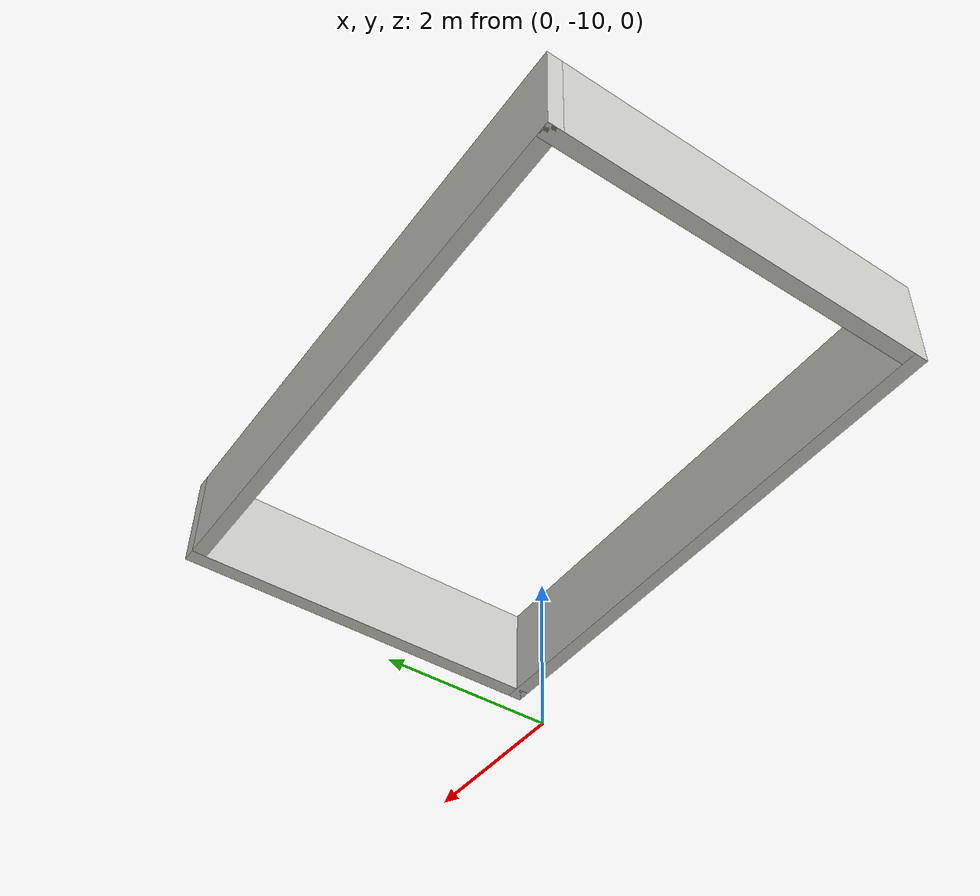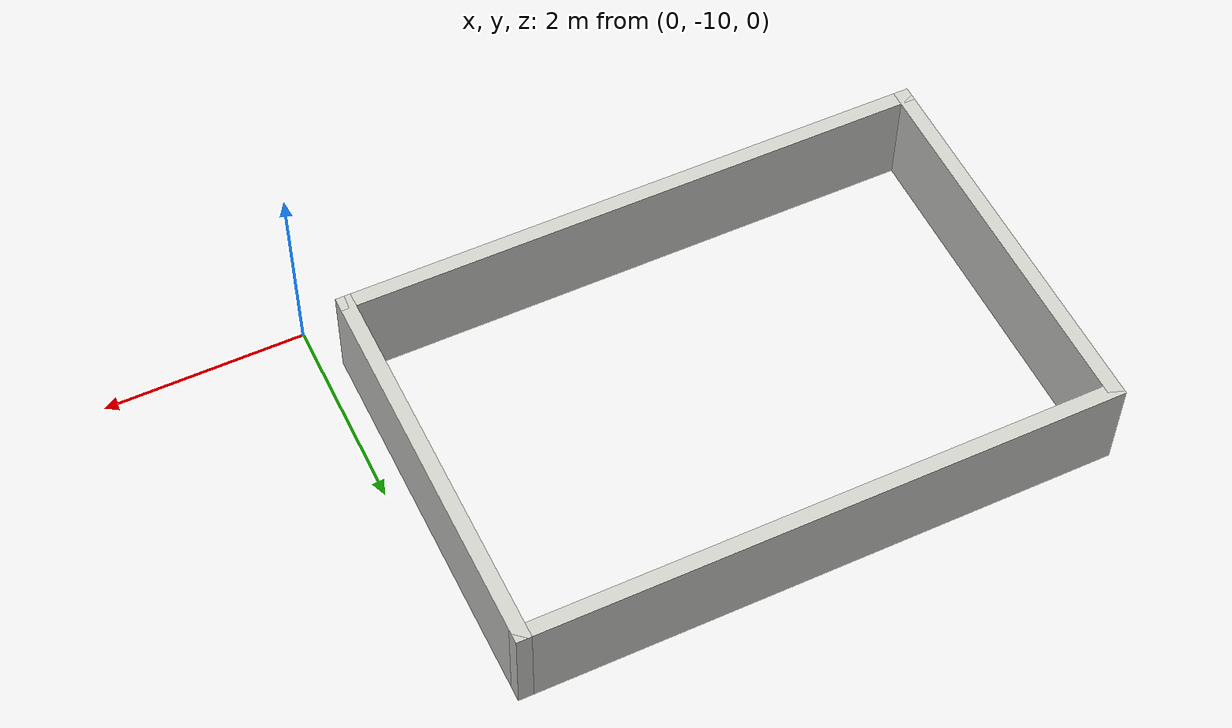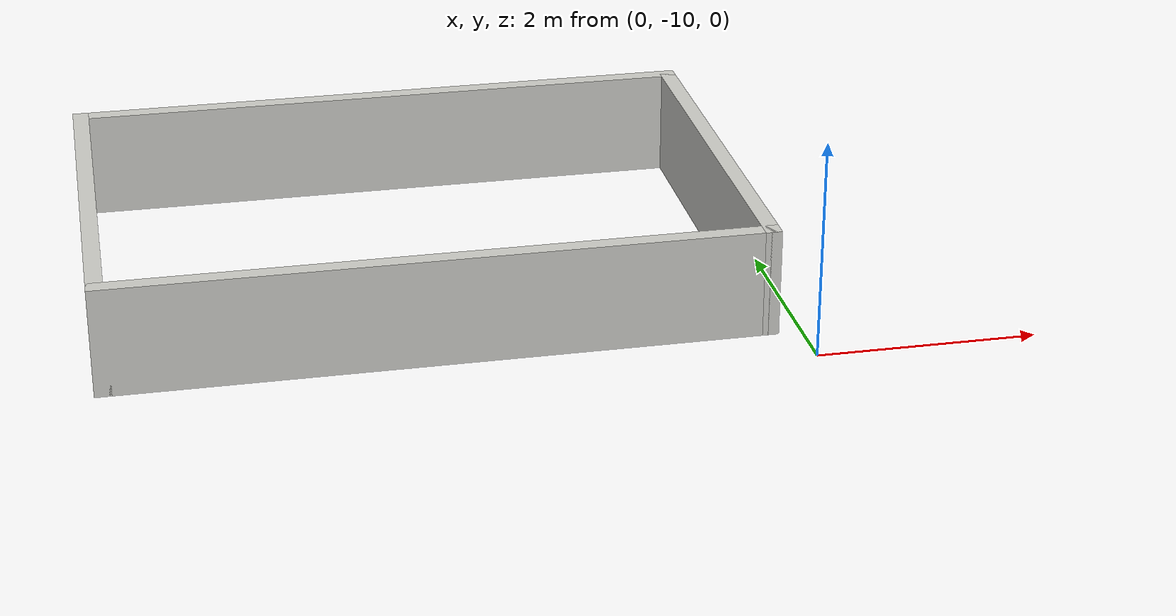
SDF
<?xml version='1.0'?>
<sdf version='1.7'>
  <model name='ground'>
    <pose>-3.109 -4.768 0 0 -0 0</pose>
    <link name='Wall_23'>
      <collision name='Wall_23_Collision'>
        <geometry>
          <box>
            <size>4 0.15 1</size>
          </box>
        </geometry>
        <pose>0 0 0.5 0 -0 0</pose>
      </collision>
      <visual name='Wall_23_Visual'>
        <pose>0 0 0.5 0 -0 0</pose>
        <geometry>
          <box>
            <size>4 0.15 1</size>
          </box>
        </geometry>
        <material>
          <script>
            <uri>file://media/materials/scripts/gazebo.material</uri>
            <name>Gazebo/CeilingTiled</name>
          </script>
          <ambient>0.996078 0.47451 0.0196078 1</ambient>
        </material>
        <meta>
          <layer>0</layer>
        </meta>
      </visual>
      <pose>-3.034 -2.768 0 0 -0 -1.5708</pose>
    </link>
    <link name='Wall_24'>
      <collision name='Wall_24_Collision'>
        <geometry>
          <box>
            <size>6 0.15 1</size>
          </box>
        </geometry>
        <pose>0 0 0.5 0 -0 0</pose>
      </collision>
      <visual name='Wall_24_Visual'>
        <pose>0 0 0.5 0 -0 0</pose>
        <geometry>
          <box>
            <size>6 0.15 1</size>
          </box>
        </geometry>
        <material>
          <script>
            <uri>file://media/materials/scripts/gazebo.material</uri>
            <name>Gazebo/CeilingTiled</name>
          </script>
          <ambient>0.996078 0.47451 0.0196078 1</ambient>
        </material>
        <meta>
          <layer>0</layer>
        </meta>
      </visual>
      <pose>-0.109 -4.693 0 0 -0 0</pose>
    </link>
    <link name='Wall_25'>
      <collision name='Wall_25_Collision'>
        <geometry>
          <box>
            <size>4 0.15 1</size>
          </box>
        </geometry>
        <pose>0 0 0.5 0 -0 0</pose>
      </collision>
      <visual name='Wall_25_Visual'>
        <pose>0 0 0.5 0 -0 0</pose>
        <geometry>
          <box>
            <size>4 0.15 1</size>
          </box>
        </geometry>
        <material>
          <script>
            <uri>file://media/materials/scripts/gazebo.material</uri>
            <name>Gazebo/CeilingTiled</name>
          </script>
          <ambient>0.996078 0.47451 0.0196078 1</ambient>
        </material>
        <meta>
          <layer>0</layer>
        </meta>
      </visual>
      <pose>2.816 -2.768 0 0 -0 1.5708</pose>
    </link>
    <link name='Wall_26'>
      <collision name='Wall_26_Collision'>
        <geometry>
          <box>
            <size>6 0.15 1</size>
          </box>
        </geometry>
        <pose>0 0 0.5 0 -0 0</pose>
      </collision>
      <visual name='Wall_26_Visual'>
        <pose>0 0 0.5 0 -0 0</pose>
        <geometry>
          <box>
            <size>6 0.15 1</size>
          </box>
        </geometry>
        <material>
          <script>
            <uri>file://media/materials/scripts/gazebo.material</uri>
            <name>Gazebo/CeilingTiled</name>
          </script>
          <ambient>0.996078 0.47451 0.0196078 1</ambient>
        </material>
        <meta>
          <layer>0</layer>
        </meta>
      </visual>
      <pose>-0.109 -0.843 0 0 -0 3.14159</pose>
    </link>
    <static>1</static>
  </model>
</sdf>
